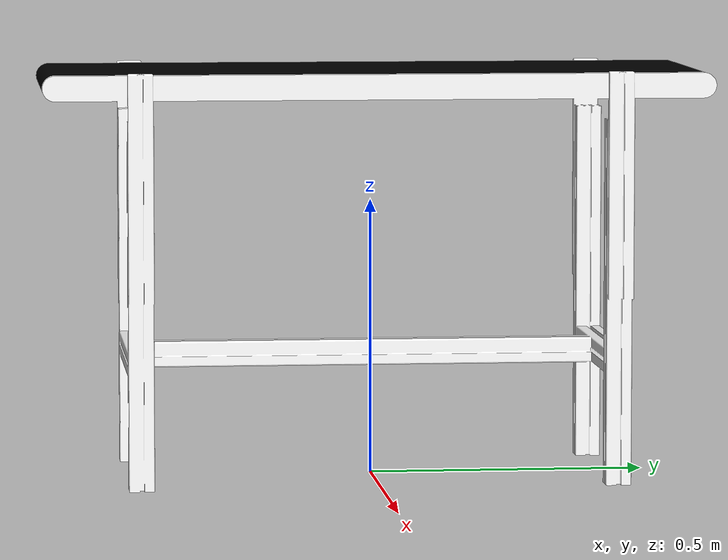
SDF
<?xml version="1.0" ?>
<sdf version="1.9">

  <model name="conveyor_belt">

    <static>true</static>

    <link name="link">

      <pose>0 0 0 0 0 0</pose>

      <visual name="visual">

        <pose>0 0 0 0 0 0</pose>

        <geometry>
          <mesh>
            <uri>meshes/conveyor_belt.dae</uri>
          </mesh>
        </geometry>

      </visual>

      <collision name="collision">

        <pose>0 0 0.71 0 0 0</pose>

        <geometry>
          <box>
            <size>0.50 1.20 0.055</size>
          </box>
        </geometry>

        <surface>

          <contact>
            <ode>
              <kp>100000</kp>
              <kd>10</kd>
              <min_depth>0.001</min_depth>
              <max_vel>1.0</max_vel>
            </ode>
          </contact>

          <friction>
            <ode>

              <!--
                La cinta se mueve en el eje Y local.
              -->

              <fdir1>1 0 0</fdir1>

              <mu>2.0</mu>

              <mu2>0.5</mu2>

            </ode>
          </friction>

        </surface>

      </collision>

    </link>

    <!-- TRACK CONTROLLER                                       -->

    <plugin
      filename="gz-sim-track-controller-system"
      name="gz::sim::systems::TrackController">

      <link>link</link>

      <track_orientation>0 0 1.57079632679</track_orientation>

      <min_velocity>-1.0</min_velocity>

      <max_velocity>1.0</max_velocity>

    </plugin>

  </model>

</sdf>
